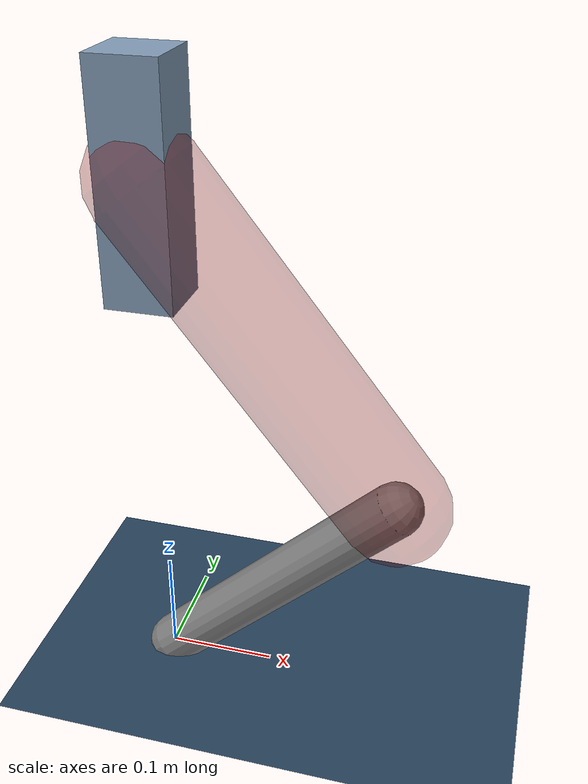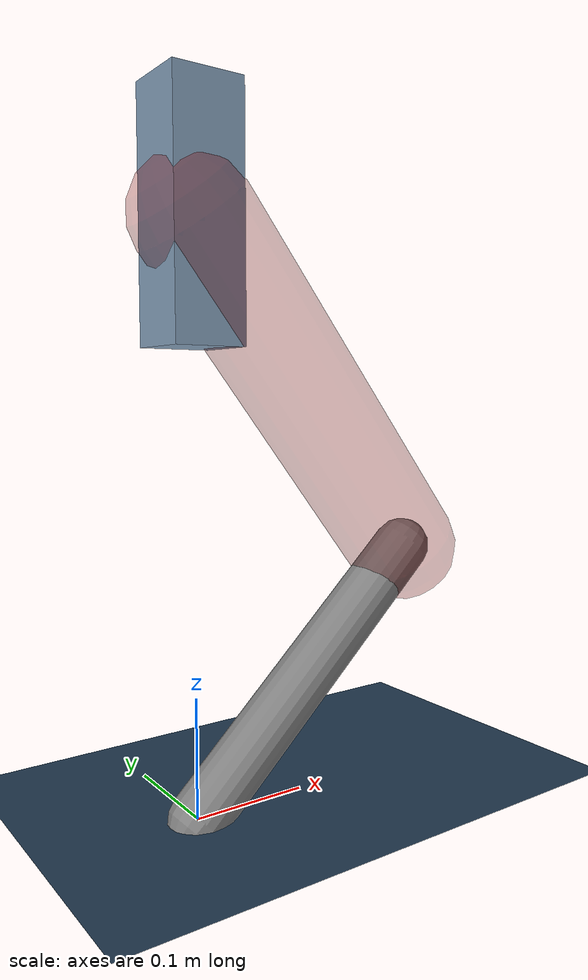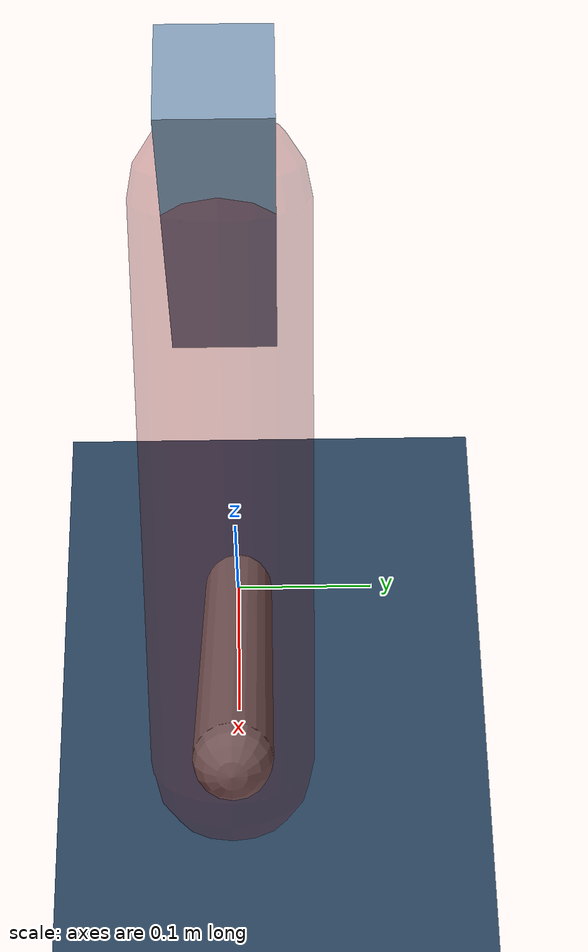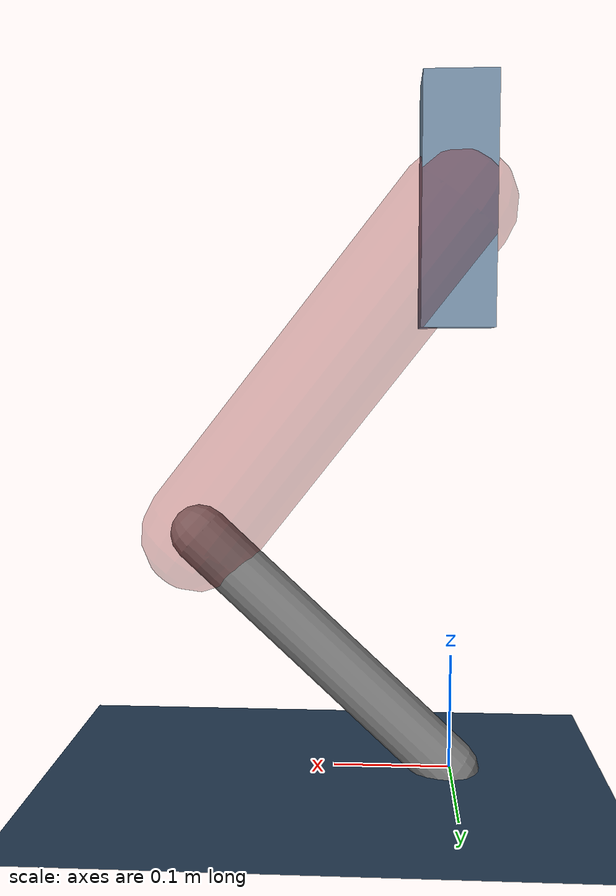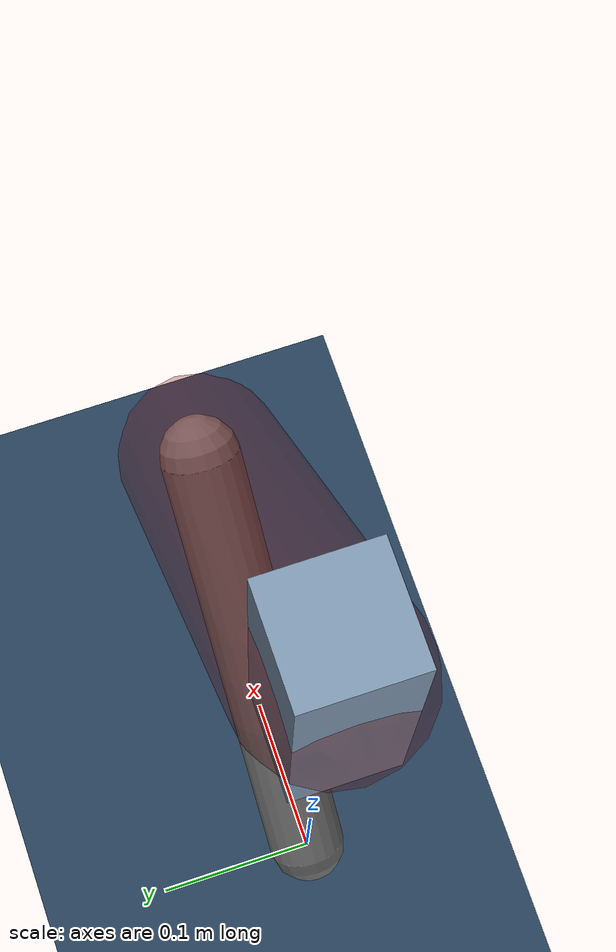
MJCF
<mujoco model="Hopper2D">
	<compiler inertiafromgeom="true" angle="radian" />
	<option timestep="0.001" integrator="implicit" cone="elliptic" solver="Newton" tolerance="1e-10" />

	<default>
		<geom contype="1" conaffinity="1" condim="3" friction="2 0.005 0.0001" solref="0.005 1" />
		<joint limited="true" damping="0.1" />
	</default>

	<asset>
		<texture name="skybox" type="skybox" builtin="gradient" rgb1=".4 .6 .8" rgb2="0 0 0" width="800" height="800" />
		<texture name="grid" type="2d" builtin="checker" rgb1=".1 .2 .3" rgb2=".2 .3 .4" width="300" height="300" mark="edge" markrgb=".2 .3 .4" />
		<material name="ground" texture="grid" texrepeat="1 1" texuniform="true" reflectance="0.1" />
		<material name="leg" rgba="0.5 0.6 0.7 1" />
	</asset>

	<worldbody>

		<geom name="floor" type="plane" size="5 5 0.25" material="ground" />

		<light directional="false" diffuse="0.8 0.8 0.8" specular="0.3 0.3 0.3" pos="0 0 2" dir="0 0 -1" />
		<light mode="targetbodycom" target="base" directional="false" diffuse="0.8 0.8 0.8" specular="0.3 0.3 0.3" pos="0 0 2" dir="0 0 -1" />

		<camera name="fixed" pos="0 -2 1" xyaxes="1 0 0 0 0 1" />
		<camera name="tracking" mode="trackcom" pos="0 -3 1" />

		<body name="root" pos="0 0 0.47874131501497863">
			<joint name="slide_x" type="slide" axis="1 0 0" range="-100 100" />
			<joint name="slide_z" type="slide" axis="0 0 1" range="0 10" />

			<body name="base" pos="0 0 0">
				<geom name="torso" type="box" size="0.03 0.03 0.1" mass="2.7640000000000002" material="leg" />

				<body name="link1" pos="0 0 0" euler="0 0.9048592412487145 0">
					<joint type="hinge" axis="0 -1 0" pos="0 0 0" name="hinge1" limited="true" range="-3.14 3.14" stiffness="0" damping="0.1" />
					<geom name="thigh" type="capsule" fromto="0 0 0 0.34948688129095307 0 0" size="0.05" rgba="0.5 0 0 0.3" mass="1.1252632676146685" />

					<body name="link2" pos="0.34948688129095307 0 0" euler="0 1.4798748405396618 0">
						<joint type="hinge" axis="0 -1 0" pos="0 0 0" name="hinge2" limited="true" range="-3.14 3.14" stiffness="0" damping="0.1" />
						<geom name="shank" type="capsule" fromto="0 0 0 0.2969913248631798 0 0" size="0.025" mass="0.48099305989054386" />

					</body>
				</body>
			</body>
		</body>
	</worldbody>

	<actuator>
		<motor name="torque1" joint="hinge1" ctrlrange="-74.39431882809573 74.39431882809573" ctrllimited="true" gear="1" />
		<motor name="torque2" joint="hinge2" ctrlrange="-97.08900194028787 97.08900194028787" ctrllimited="true" gear="1" />
	</actuator>
</mujoco>
